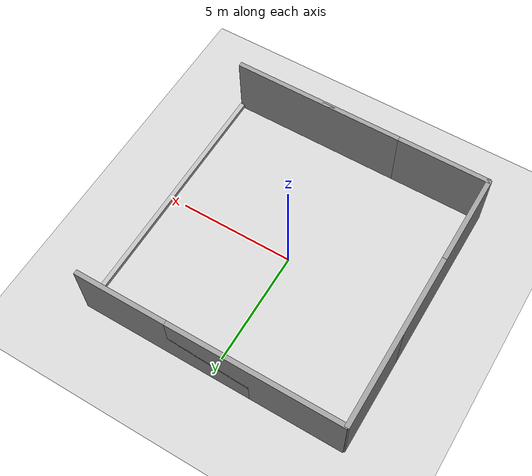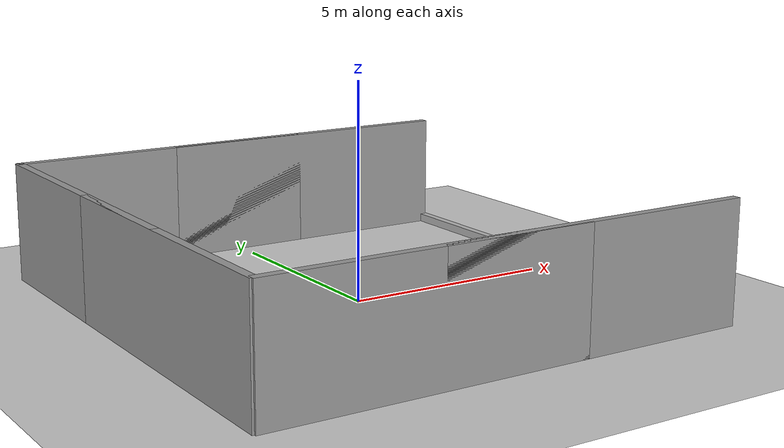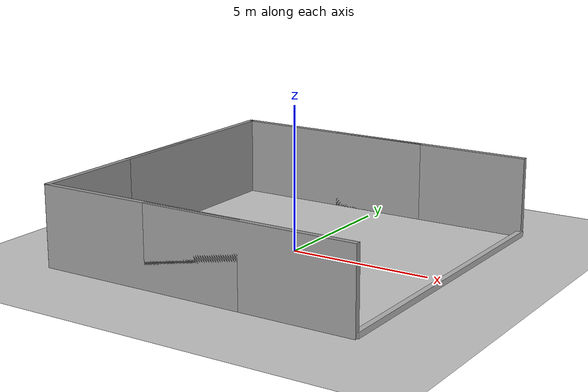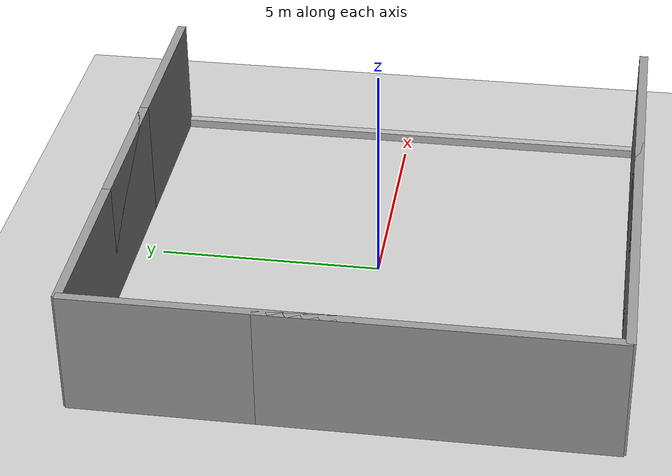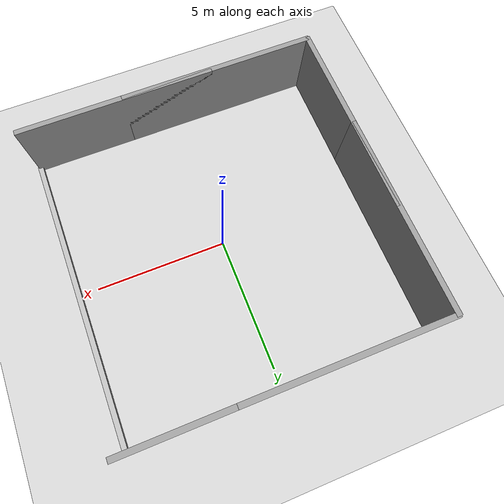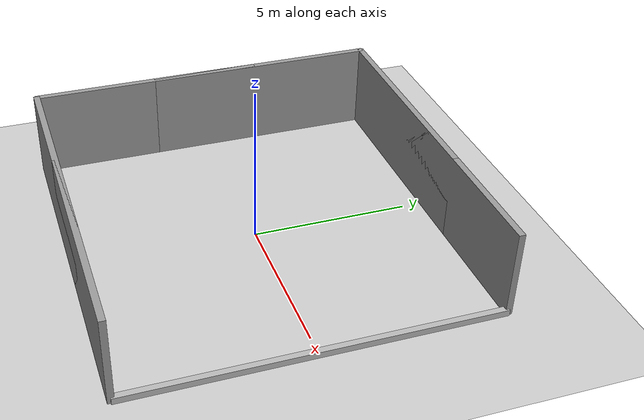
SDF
<?xml version="1.0" ?>
<!--
    Copyright (c) 2019 Horizon Robotics. All Rights Reserved.                            -->
<sdf version="1.6">
  <world name="default">
    <physics type="ode">
      <max_step_size>0.001</max_step_size>
      <real_time_factor>1</real_time_factor>
      <real_time_update_rate>0</real_time_update_rate>
      <max_contacts>20</max_contacts>
      <ode>
        <solver>
          <type>quick</type>
          <iters>50</iters>
          <sor>1.3</sor>
        </solver>
        <constraints>
          <contact_max_correcting_vel>1</contact_max_correcting_vel>
          <contact_surface_layer>0.002</contact_surface_layer>
          <cfm>0.0001</cfm>
          <erp>0.3</erp>
        </constraints>
      </ode>
    </physics>
    <!-- Ground -->
    <include>
      <uri>model://texture_ground_plane</uri>
    </include>
    <!-- A global light source -->
    <include>
      <uri>model://sun</uri>
    </include>
    <!-- AGENT-INSERTION-POINT -->
    <model name='grey_wall_left'>
      <static>1</static>
      <include>
        <uri>model://grey_wall</uri>
      </include>
      <pose frame=''>-2 5.7 0 0 -0 0</pose>
    </model>
    <model name='grey_wall_left2'>
      <static>1</static>
      <include>
        <uri>model://grey_wall</uri>
      </include>
      <pose frame=''>2 5.7 0 0 -0 0</pose>
    </model>
    <model name='grey_wall_right'>
      <static>1</static>
      <include>
        <uri>model://grey_wall</uri>
      </include>
      <pose frame=''>-2 -5.7 0 0 -0 0</pose>
    </model>
    <model name='grey_wall_right2'>
      <static>1</static>
      <include>
        <uri>model://grey_wall</uri>
      </include>
      <pose frame=''>2 -5.7 0 0 -0 0</pose>
    </model>
    <model name='grey_wall_behind0'>
      <static>1</static>
      <include>
        <uri>model://grey_wall</uri>
      </include>
      <pose frame=''>-5.7 2 0 0 -0 1.5708</pose>
    </model>
    <model name='grey_wall_behind1'>
      <static>1</static>
      <include>
        <uri>model://grey_wall</uri>
      </include>
      <pose frame=''>-5.7 -2 0 0 -0 1.5708</pose>
    </model>
    <model name="east_wall">
      <static>1</static>
      <pose>5.7 0 0.1 0 0 0</pose>
      <link name ="link">
        <pose>0 0 0 0 0 0</pose>
        <collision name ="collision">
          <geometry>
            <box><size>0.2 11.4 0.2</size></box>
          </geometry>
        </collision>
        <visual name ='visual'>
          <geometry>
            <box><size>0.2 11.4 0.2</size></box>
          </geometry>
        </visual>
      </link>
    </model>
  </world>
</sdf>

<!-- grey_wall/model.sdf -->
<sdf version="1.5">
  <model name="grey_wall">
    <static>true</static>
    <link name="link">
      <pose>0 0 1.4 0 0 0</pose>
      <collision name="collision">
        <geometry>
          <box>
            <size>7.5 0.2 2.8</size>
          </box>
        </geometry>
      </collision>
      <visual name="visual">
        <cast_shadows>false</cast_shadows>
        <geometry>
          <box>
            <size>7.5 0.2 2.8</size>
          </box>
        </geometry>
        <material>
          <script>
            <uri>model://../model_source/models/grey_wall/materials/scripts</uri>
            <uri>model://../model_source/models/grey_wall/materials/textures</uri>
            <name>vrc/grey_wall</name>
          </script>
        </material>
      </visual>
    </link>
  </model>
</sdf>

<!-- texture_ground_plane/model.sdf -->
<sdf version="1.5">
  <model name="ground_plane">
    <static>true</static>
    <link name="link">
      <collision name="collision">
        <geometry>
          <plane>
            <normal>0 0 1</normal>
            <size>20 20</size>
          </plane>
        </geometry>
        <surface>
          <friction>
            <ode>
              <mu>100</mu>
              <mu2>50</mu2>
            </ode>
          </friction>
        </surface>
      </collision>
      <visual name="visual">
        <cast_shadows>false</cast_shadows>
        <geometry>
          <plane>
            <normal>0 0 1</normal>
            <size>20 20</size>
          </plane>
        </geometry>
        <material>
          <script>
            <uri>model://texture_ground_plane/materials/scripts/texture_ground_plane.material</uri>
            <uri>model://texture_ground_plane/materials/textures/ground_texture.jpeg</uri>
            <name>TextureGroundPlane/Image</name>
          </script>
        </material>
      </visual>
    </link>
  </model>
</sdf>
